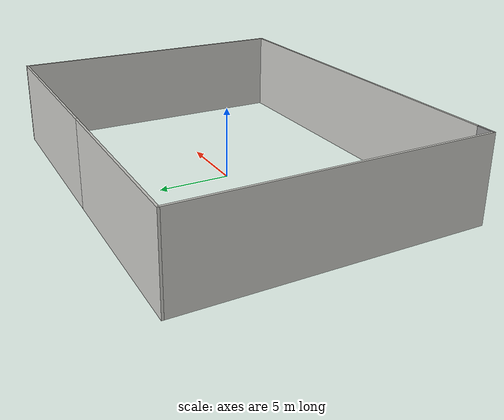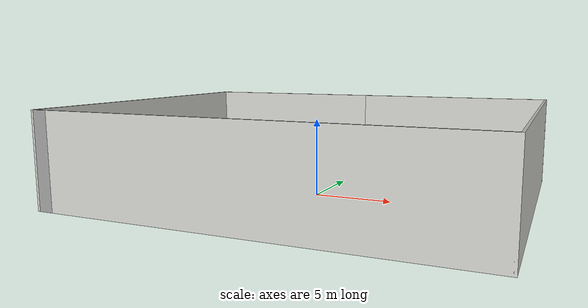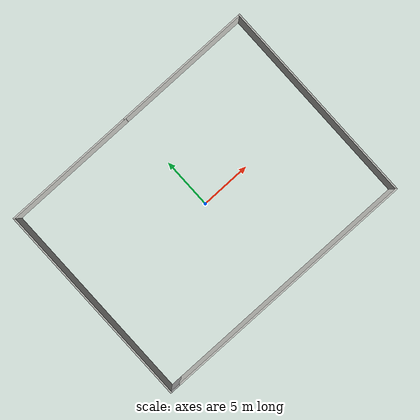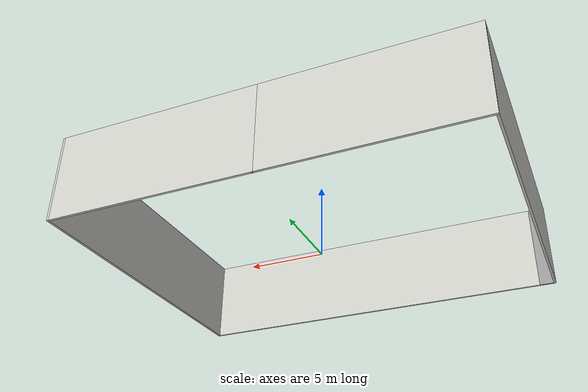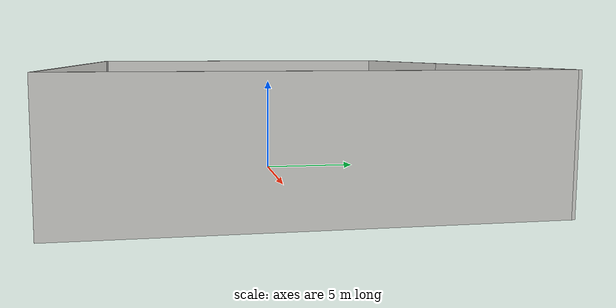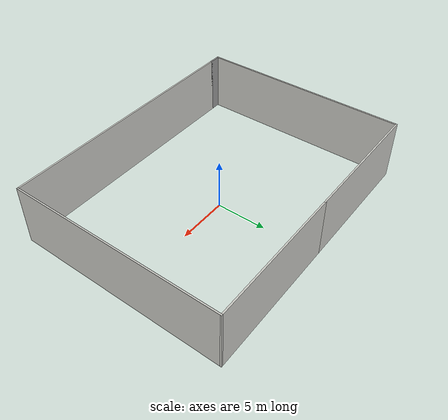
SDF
<?xml version='1.0'?>
<sdf version='1.7'>
  <model name='wh_wall'>
    <link name='Wall_10'>
      <pose>0.55 -10.3 0 0 -0 0</pose>
      <self_collide>0</self_collide>
      <enable_wind>0</enable_wind>
      <kinematic>0</kinematic>
      <visual name='Wall_10_Visual'>
        <pose>0 0 3 0 -0 0</pose>
        <geometry>
          <box>
            <size>25.75 0.15 6</size>
          </box>
        </geometry>
        <material>
          <script>
            <uri>file://media/materials/scripts/gazebo.material</uri>
            <name>Gazebo/CeilingTiled</name>
          </script>
          <ambient>1 1 1 1</ambient>
          <shader type='pixel'/>
        </material>
        <meta>
          <layer>0</layer>
        </meta>
        <transparency>0</transparency>
        <cast_shadows>1</cast_shadows>
      </visual>
      <collision name='Wall_10_Collision'>
        <laser_retro>0</laser_retro>
        <max_contacts>10</max_contacts>
        <pose>0 0 3 0 -0 0</pose>
        <geometry>
          <box>
            <size>25.75 0.15 6</size>
          </box>
        </geometry>
        <surface>
          <friction>
            <ode>
              <mu>1</mu>
              <mu2>1</mu2>
              <fdir1>0 0 0</fdir1>
              <slip1>0</slip1>
              <slip2>0</slip2>
            </ode>
            <torsional>
              <coefficient>1</coefficient>
              <patch_radius>0</patch_radius>
              <surface_radius>0</surface_radius>
              <use_patch_radius>1</use_patch_radius>
              <ode>
                <slip>0</slip>
              </ode>
            </torsional>
          </friction>
          <bounce>
            <restitution_coefficient>0</restitution_coefficient>
            <threshold>1e+06</threshold>
          </bounce>
          <contact>
            <collide_without_contact>0</collide_without_contact>
            <collide_without_contact_bitmask>1</collide_without_contact_bitmask>
            <collide_bitmask>1</collide_bitmask>
            <ode>
              <soft_cfm>0</soft_cfm>
              <soft_erp>0.2</soft_erp>
              <kp>1e+13</kp>
              <kd>1</kd>
              <max_vel>0.01</max_vel>
              <min_depth>0</min_depth>
            </ode>
            <bullet>
              <split_impulse>1</split_impulse>
              <split_impulse_penetration_threshold>-0.01</split_impulse_penetration_threshold>
              <soft_cfm>0</soft_cfm>
              <soft_erp>0.2</soft_erp>
              <kp>1e+13</kp>
              <kd>1</kd>
            </bullet>
          </contact>
        </surface>
      </collision>
    </link>
    <link name='Wall_11'>
      <pose>13.35 0 0 0 -0 1.5708</pose>
      <self_collide>0</self_collide>
      <enable_wind>0</enable_wind>
      <kinematic>0</kinematic>
      <visual name='Wall_11_Visual'>
        <pose>0 0 3 0 -0 0</pose>
        <geometry>
          <box>
            <size>20.75 0.15 6</size>
          </box>
        </geometry>
        <material>
          <script>
            <uri>file://media/materials/scripts/gazebo.material</uri>
            <name>Gazebo/CeilingTiled</name>
          </script>
          <ambient>1 1 1 1</ambient>
          <shader type='pixel'/>
        </material>
        <meta>
          <layer>0</layer>
        </meta>
        <transparency>0</transparency>
        <cast_shadows>1</cast_shadows>
      </visual>
      <collision name='Wall_11_Collision'>
        <laser_retro>0</laser_retro>
        <max_contacts>10</max_contacts>
        <pose>0 0 3 0 -0 0</pose>
        <geometry>
          <box>
            <size>20.75 0.15 6</size>
          </box>
        </geometry>
        <surface>
          <friction>
            <ode>
              <mu>1</mu>
              <mu2>1</mu2>
              <fdir1>0 0 0</fdir1>
              <slip1>0</slip1>
              <slip2>0</slip2>
            </ode>
            <torsional>
              <coefficient>1</coefficient>
              <patch_radius>0</patch_radius>
              <surface_radius>0</surface_radius>
              <use_patch_radius>1</use_patch_radius>
              <ode>
                <slip>0</slip>
              </ode>
            </torsional>
          </friction>
          <bounce>
            <restitution_coefficient>0</restitution_coefficient>
            <threshold>1e+06</threshold>
          </bounce>
          <contact>
            <collide_without_contact>0</collide_without_contact>
            <collide_without_contact_bitmask>1</collide_without_contact_bitmask>
            <collide_bitmask>1</collide_bitmask>
            <ode>
              <soft_cfm>0</soft_cfm>
              <soft_erp>0.2</soft_erp>
              <kp>1e+13</kp>
              <kd>1</kd>
              <max_vel>0.01</max_vel>
              <min_depth>0</min_depth>
            </ode>
            <bullet>
              <split_impulse>1</split_impulse>
              <split_impulse_penetration_threshold>-0.01</split_impulse_penetration_threshold>
              <soft_cfm>0</soft_cfm>
              <soft_erp>0.2</soft_erp>
              <kp>1e+13</kp>
              <kd>1</kd>
            </bullet>
          </contact>
        </surface>
      </collision>
    </link>
    <link name='Wall_12'>
      <pose>6.55 10.3 0 0 -0 3.14159</pose>
      <self_collide>0</self_collide>
      <enable_wind>0</enable_wind>
      <kinematic>0</kinematic>
      <visual name='Wall_12_Visual'>
        <pose>0 0 3 0 -0 0</pose>
        <geometry>
          <box>
            <size>13.75 0.15 6</size>
          </box>
        </geometry>
        <material>
          <script>
            <uri>file://media/materials/scripts/gazebo.material</uri>
            <name>Gazebo/CeilingTiled</name>
          </script>
          <ambient>1 1 1 1</ambient>
          <shader type='pixel'/>
        </material>
        <meta>
          <layer>0</layer>
        </meta>
        <transparency>0</transparency>
        <cast_shadows>1</cast_shadows>
      </visual>
      <collision name='Wall_12_Collision'>
        <laser_retro>0</laser_retro>
        <max_contacts>10</max_contacts>
        <pose>0 0 3 0 -0 0</pose>
        <geometry>
          <box>
            <size>13.75 0.15 6</size>
          </box>
        </geometry>
        <surface>
          <friction>
            <ode>
              <mu>1</mu>
              <mu2>1</mu2>
              <fdir1>0 0 0</fdir1>
              <slip1>0</slip1>
              <slip2>0</slip2>
            </ode>
            <torsional>
              <coefficient>1</coefficient>
              <patch_radius>0</patch_radius>
              <surface_radius>0</surface_radius>
              <use_patch_radius>1</use_patch_radius>
              <ode>
                <slip>0</slip>
              </ode>
            </torsional>
          </friction>
          <bounce>
            <restitution_coefficient>0</restitution_coefficient>
            <threshold>1e+06</threshold>
          </bounce>
          <contact>
            <collide_without_contact>0</collide_without_contact>
            <collide_without_contact_bitmask>1</collide_without_contact_bitmask>
            <collide_bitmask>1</collide_bitmask>
            <ode>
              <soft_cfm>0</soft_cfm>
              <soft_erp>0.2</soft_erp>
              <kp>1e+13</kp>
              <kd>1</kd>
              <max_vel>0.01</max_vel>
              <min_depth>0</min_depth>
            </ode>
            <bullet>
              <split_impulse>1</split_impulse>
              <split_impulse_penetration_threshold>-0.01</split_impulse_penetration_threshold>
              <soft_cfm>0</soft_cfm>
              <soft_erp>0.2</soft_erp>
              <kp>1e+13</kp>
              <kd>1</kd>
            </bullet>
          </contact>
        </surface>
      </collision>
    </link>
    <link name='Wall_13'>
      <pose>-6.8 10.3 0 0 -0 3.14159</pose>
      <self_collide>0</self_collide>
      <enable_wind>0</enable_wind>
      <kinematic>0</kinematic>
      <visual name='Wall_13_Visual'>
        <pose>0 0 3 0 -0 0</pose>
        <geometry>
          <box>
            <size>13.25 0.15 6</size>
          </box>
        </geometry>
        <material>
          <script>
            <uri>file://media/materials/scripts/gazebo.material</uri>
            <name>Gazebo/CeilingTiled</name>
          </script>
          <ambient>1 1 1 1</ambient>
          <shader type='pixel'/>
        </material>
        <meta>
          <layer>0</layer>
        </meta>
        <transparency>0</transparency>
        <cast_shadows>1</cast_shadows>
      </visual>
      <collision name='Wall_13_Collision'>
        <laser_retro>0</laser_retro>
        <max_contacts>10</max_contacts>
        <pose>0 0 3 0 -0 0</pose>
        <geometry>
          <box>
            <size>13.25 0.15 6</size>
          </box>
        </geometry>
        <surface>
          <friction>
            <ode>
              <mu>1</mu>
              <mu2>1</mu2>
              <fdir1>0 0 0</fdir1>
              <slip1>0</slip1>
              <slip2>0</slip2>
            </ode>
            <torsional>
              <coefficient>1</coefficient>
              <patch_radius>0</patch_radius>
              <surface_radius>0</surface_radius>
              <use_patch_radius>1</use_patch_radius>
              <ode>
                <slip>0</slip>
              </ode>
            </torsional>
          </friction>
          <bounce>
            <restitution_coefficient>0</restitution_coefficient>
            <threshold>1e+06</threshold>
          </bounce>
          <contact>
            <collide_without_contact>0</collide_without_contact>
            <collide_without_contact_bitmask>1</collide_without_contact_bitmask>
            <collide_bitmask>1</collide_bitmask>
            <ode>
              <soft_cfm>0</soft_cfm>
              <soft_erp>0.2</soft_erp>
              <kp>1e+13</kp>
              <kd>1</kd>
              <max_vel>0.01</max_vel>
              <min_depth>0</min_depth>
            </ode>
            <bullet>
              <split_impulse>1</split_impulse>
              <split_impulse_penetration_threshold>-0.01</split_impulse_penetration_threshold>
              <soft_cfm>0</soft_cfm>
              <soft_erp>0.2</soft_erp>
              <kp>1e+13</kp>
              <kd>1</kd>
            </bullet>
          </contact>
        </surface>
      </collision>
    </link>
    <link name='Wall_14'>
      <pose>-13.35 0 0 0 0 -1.5708</pose>
      <self_collide>0</self_collide>
      <enable_wind>0</enable_wind>
      <kinematic>0</kinematic>
      <visual name='Wall_14_Visual'>
        <pose>0 0 3 0 -0 0</pose>
        <geometry>
          <box>
            <size>20.75 0.15 6</size>
          </box>
        </geometry>
        <material>
          <script>
            <uri>file://media/materials/scripts/gazebo.material</uri>
            <name>Gazebo/CeilingTiled</name>
          </script>
          <ambient>1 1 1 1</ambient>
          <shader type='pixel'/>
        </material>
        <meta>
          <layer>0</layer>
        </meta>
        <transparency>0</transparency>
        <cast_shadows>1</cast_shadows>
      </visual>
      <collision name='Wall_14_Collision'>
        <laser_retro>0</laser_retro>
        <max_contacts>10</max_contacts>
        <pose>0 0 3 0 -0 0</pose>
        <geometry>
          <box>
            <size>20.75 0.15 6</size>
          </box>
        </geometry>
        <surface>
          <friction>
            <ode>
              <mu>1</mu>
              <mu2>1</mu2>
              <fdir1>0 0 0</fdir1>
              <slip1>0</slip1>
              <slip2>0</slip2>
            </ode>
            <torsional>
              <coefficient>1</coefficient>
              <patch_radius>0</patch_radius>
              <surface_radius>0</surface_radius>
              <use_patch_radius>1</use_patch_radius>
              <ode>
                <slip>0</slip>
              </ode>
            </torsional>
          </friction>
          <bounce>
            <restitution_coefficient>0</restitution_coefficient>
            <threshold>1e+06</threshold>
          </bounce>
          <contact>
            <collide_without_contact>0</collide_without_contact>
            <collide_without_contact_bitmask>1</collide_without_contact_bitmask>
            <collide_bitmask>1</collide_bitmask>
            <ode>
              <soft_cfm>0</soft_cfm>
              <soft_erp>0.2</soft_erp>
              <kp>1e+13</kp>
              <kd>1</kd>
              <max_vel>0.01</max_vel>
              <min_depth>0</min_depth>
            </ode>
            <bullet>
              <split_impulse>1</split_impulse>
              <split_impulse_penetration_threshold>-0.01</split_impulse_penetration_threshold>
              <soft_cfm>0</soft_cfm>
              <soft_erp>0.2</soft_erp>
              <kp>1e+13</kp>
              <kd>1</kd>
            </bullet>
          </contact>
        </surface>
      </collision>
    </link>
    <link name='Wall_15'>
      <pose>-12.8 -10.3 0 0 -0 0</pose>
      <self_collide>0</self_collide>
      <enable_wind>0</enable_wind>
      <kinematic>0</kinematic>
      <visual name='Wall_15_Visual'>
        <pose>0 0 3 0 -0 0</pose>
        <geometry>
          <box>
            <size>1.25 0.15 6</size>
          </box>
        </geometry>
        <material>
          <script>
            <uri>file://media/materials/scripts/gazebo.material</uri>
            <name>Gazebo/Grey</name>
          </script>
          <ambient>1 1 1 1</ambient>
          <shader type='pixel'/>
        </material>
        <meta>
          <layer>0</layer>
        </meta>
        <transparency>0</transparency>
        <cast_shadows>1</cast_shadows>
      </visual>
      <collision name='Wall_15_Collision'>
        <laser_retro>0</laser_retro>
        <max_contacts>10</max_contacts>
        <pose>0 0 3 0 -0 0</pose>
        <geometry>
          <box>
            <size>1.25 0.15 6</size>
          </box>
        </geometry>
        <surface>
          <friction>
            <ode>
              <mu>1</mu>
              <mu2>1</mu2>
              <fdir1>0 0 0</fdir1>
              <slip1>0</slip1>
              <slip2>0</slip2>
            </ode>
            <torsional>
              <coefficient>1</coefficient>
              <patch_radius>0</patch_radius>
              <surface_radius>0</surface_radius>
              <use_patch_radius>1</use_patch_radius>
              <ode>
                <slip>0</slip>
              </ode>
            </torsional>
          </friction>
          <bounce>
            <restitution_coefficient>0</restitution_coefficient>
            <threshold>1e+06</threshold>
          </bounce>
          <contact>
            <collide_without_contact>0</collide_without_contact>
            <collide_without_contact_bitmask>1</collide_without_contact_bitmask>
            <collide_bitmask>1</collide_bitmask>
            <ode>
              <soft_cfm>0</soft_cfm>
              <soft_erp>0.2</soft_erp>
              <kp>1e+13</kp>
              <kd>1</kd>
              <max_vel>0.01</max_vel>
              <min_depth>0</min_depth>
            </ode>
            <bullet>
              <split_impulse>1</split_impulse>
              <split_impulse_penetration_threshold>-0.01</split_impulse_penetration_threshold>
              <soft_cfm>0</soft_cfm>
              <soft_erp>0.2</soft_erp>
              <kp>1e+13</kp>
              <kd>1</kd>
            </bullet>
          </contact>
        </surface>
      </collision>
    </link>
    <static>1</static>
    <allow_auto_disable>1</allow_auto_disable>
  </model>
</sdf>
